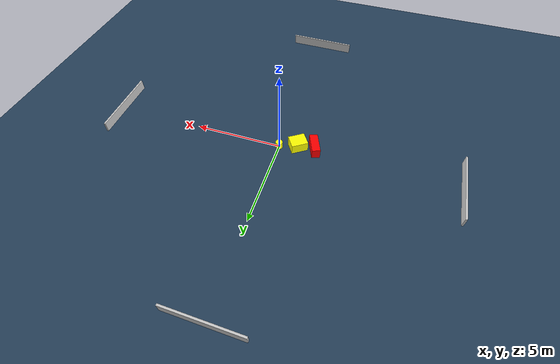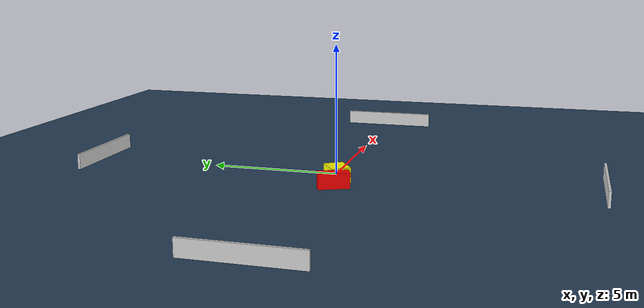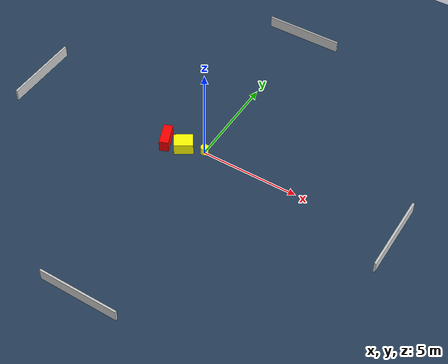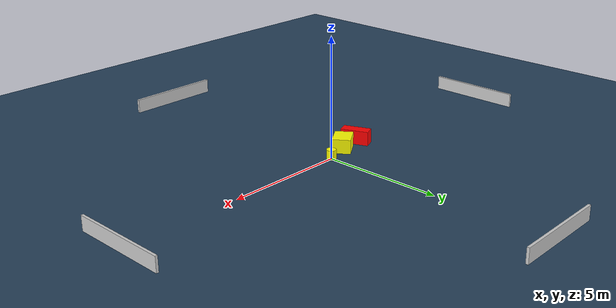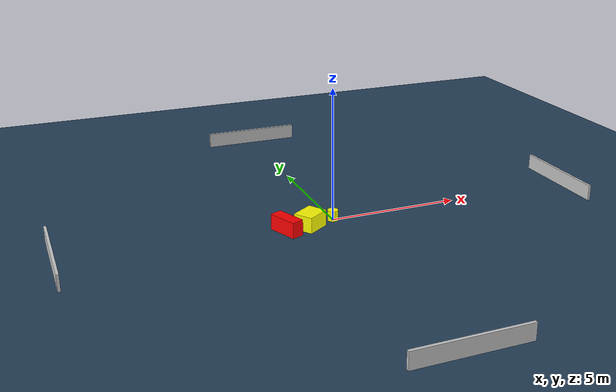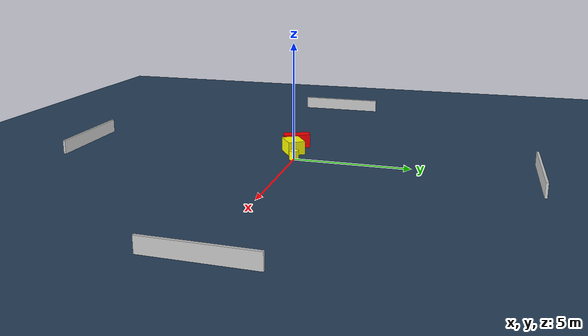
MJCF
<?xml version="1.0" ?>
<mujoco model="generated_environment">
  <option timestep="0.01" integrator="RK4" cone="elliptic"/>
  <default>
    <geom density="1"/>
  </default>
  <asset>
    <texture builtin="gradient" height="3072" name="skybox" rgb1="0.3 0.5 0.7" rgb2="0 0 0" type="skybox" width="512"/>
    <texture builtin="checker" height="300" name="groundplane" rgb1="0.2 0.3 0.4" rgb2="0.1 0.2 0.3" type="2d" width="300"/>
    <material name="groundplane" reflectance="0.2" texrepeat="5 5" texture="groundplane"/>
  </asset>
  <worldbody>
    <light dir="0 0 -1" directional="true" pos="0 0 1.5"/>
    <geom condim="3" friction="0.5 0.005 0.001" material="groundplane" name="floor" pos="0 0 0" size="0 0 0.05" type="plane"/>
    <body name="walls">
      <geom name="wall_1" condim="4" pos="-10.0 0.0 0.3" rgba="0.800000011920929 0.800000011920929 0.800000011920929 1.0" size="0.05 2.0 0.3" type="box"/>
      <geom name="wall_2" condim="4" pos="10.0 0.0 0.3" rgba="0.800000011920929 0.800000011920929 0.800000011920929 1.0" size="0.05 2.0 0.3" type="box"/>
      <geom name="wall_3" condim="4" pos="0.0 -10.0 0.3" rgba="0.800000011920929 0.800000011920929 0.800000011920929 1.0" size="2.0 0.05 0.3" type="box"/>
      <geom name="wall_4" condim="4" pos="0.0 10.0 0.3" rgba="0.800000011920929 0.800000011920929 0.800000011920929 1.0" size="2.0 0.05 0.3" type="box"/>
    </body>
    <body name="robot">
      <joint name="joint_x" type="slide" pos="0 0 0" axis="1 0 0"/>
      <joint name="joint_y" type="slide" pos="0 0 0" axis="0 1 0"/>
      <geom name="robot" type="cylinder" pos="0.0 0.0 0.2" size="0.2 0.2 0.0" mass="5.0" friction="1.0 0.005 0.0001" condim="4" rgba="1.0 1.0 0.0 1.0"/>
    </body>
    <body name="obstacle_1_movable">
      <geom name="obstacle_1_movable" condim="4" pos="-1.012841939404537 -0.3093415565922675 0.3" euler="0 0 304.14984029033013" friction="0.0 0.005 0.001" rgba="1.0 1.0 0.0 1.0" size="0.37827719041750574 0.47150220789820446 0.3" type="box" mass="0.1"/>
      <joint type="free"/>
    </body>
    <body name="obstacle_2_static">
      <geom name="obstacle_2_static" condim="4" pos="-1.9513154526752425 -0.41830004753447025 0.3" euler="0 0 22.221727020961602" friction="0.0 0.005 0.001" rgba="1.0 0.0 0.0 1.0" size="0.23215337857494348 0.5934738657428171 0.3" type="box"/>
    </body>
  </worldbody>
  <actuator>
    <motor name="actuator_x" joint="joint_x" gear="1" ctrlrange="-1 1"/>
    <motor name="actuator_y" joint="joint_y" gear="1" ctrlrange="-1 1"/>
  </actuator>
</mujoco>
